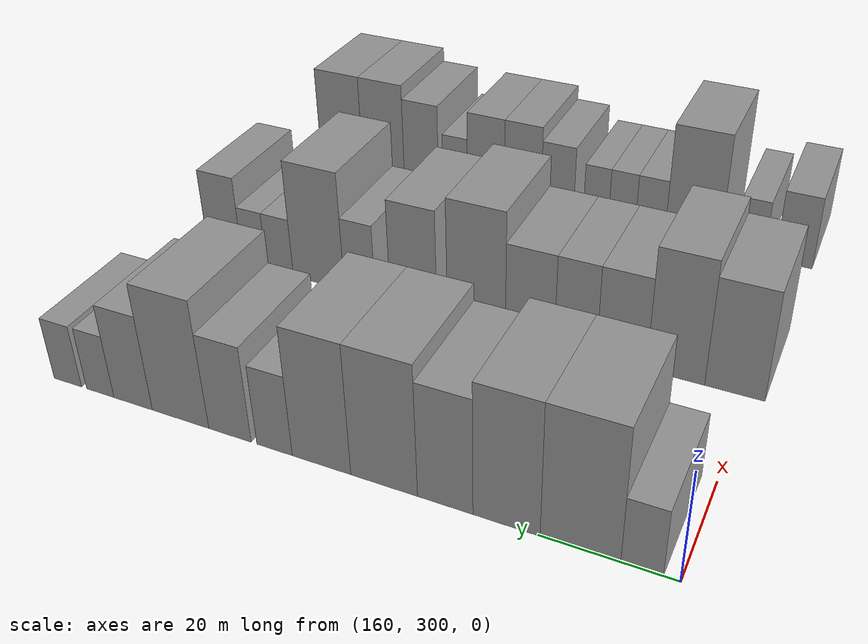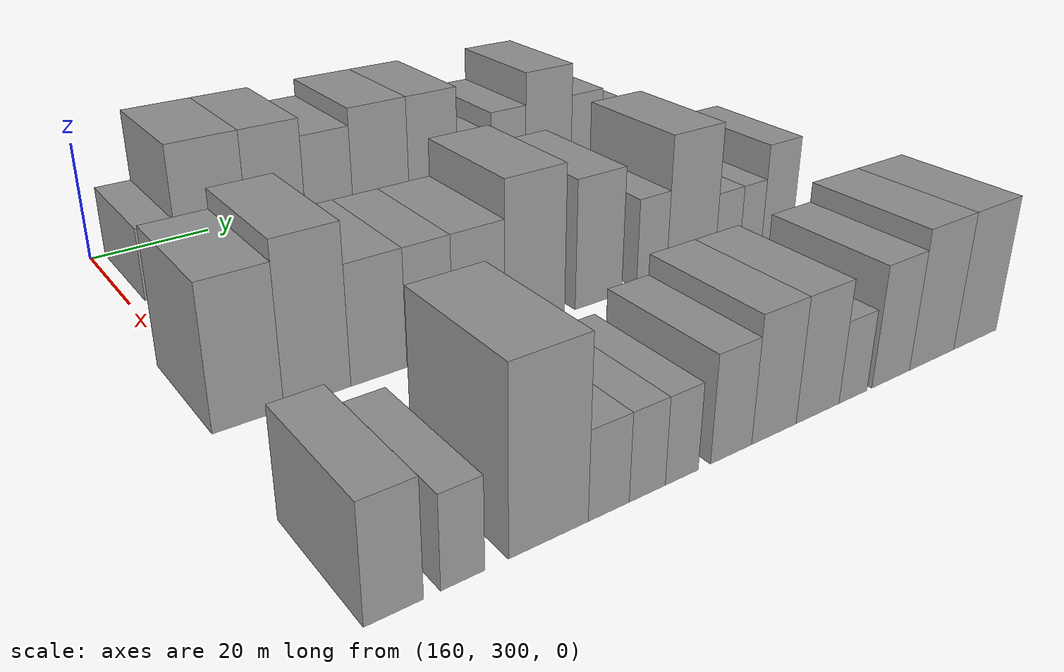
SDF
<sdf version="1.6">
 <world name="default">
  <model name="building_507">
   <static>1</static>
   <pose>170.0000 305.2744 0 0.000000 0.000000 0.000000</pose>
   <link name="link">
    <pose>0 0 6.00 0 0 0</pose>
    <collision name="collision"><geometry><box><size>20.0000 5.8676 12.0000</size></box></geometry></collision>
    <visual name="visual">
     <cast_shadows>0</cast_shadows>
     <geometry><box><size>20.0000 5.8676 12.0000</size></box></geometry>
     <material>
      <script>
       <uri>model://grey_wall/materials/scripts</uri>
       <uri>model://grey_wall/materials/textures</uri>
       <name>vrc/grey_wall</name>
      </script>
     </material>
    </visual>
   </link>
  </model>
  <model name="building_508">
   <static>1</static>
   <pose>170.0000 313.9608 0 0.000000 0.000000 0.000000</pose>
   <link name="link">
    <pose>0 0 12.00 0 0 0</pose>
    <collision name="collision"><geometry><box><size>20.0000 11.5051 24.0000</size></box></geometry></collision>
    <visual name="visual">
     <cast_shadows>0</cast_shadows>
     <geometry><box><size>20.0000 11.5051 24.0000</size></box></geometry>
     <material>
      <script>
       <uri>model://grey_wall/materials/scripts</uri>
       <uri>model://grey_wall/materials/textures</uri>
       <name>vrc/grey_wall</name>
      </script>
     </material>
    </visual>
   </link>
  </model>
  <model name="building_509">
   <static>1</static>
   <pose>170.0000 324.7236 0 0.000000 0.000000 0.000000</pose>
   <link name="link">
    <pose>0 0 12.00 0 0 0</pose>
    <collision name="collision"><geometry><box><size>20.0000 10.0204 24.0000</size></box></geometry></collision>
    <visual name="visual">
     <cast_shadows>0</cast_shadows>
     <geometry><box><size>20.0000 10.0204 24.0000</size></box></geometry>
     <material>
      <script>
       <uri>model://grey_wall/materials/scripts</uri>
       <uri>model://grey_wall/materials/textures</uri>
       <name>vrc/grey_wall</name>
      </script>
     </material>
    </visual>
   </link>
  </model>
  <model name="building_510">
   <static>1</static>
   <pose>170.0000 334.0360 0 0.000000 0.000000 0.000000</pose>
   <link name="link">
    <pose>0 0 10.50 0 0 0</pose>
    <collision name="collision"><geometry><box><size>20.0000 8.6044 21.0000</size></box></geometry></collision>
    <visual name="visual">
     <cast_shadows>0</cast_shadows>
     <geometry><box><size>20.0000 8.6044 21.0000</size></box></geometry>
     <material>
      <script>
       <uri>model://grey_wall/materials/scripts</uri>
       <uri>model://grey_wall/materials/textures</uri>
       <name>vrc/grey_wall</name>
      </script>
     </material>
    </visual>
   </link>
  </model>
  <model name="building_511">
   <static>1</static>
   <pose>170.0000 343.7216 0 0.000000 0.000000 0.000000</pose>
   <link name="link">
    <pose>0 0 12.00 0 0 0</pose>
    <collision name="collision"><geometry><box><size>20.0000 10.7669 24.0000</size></box></geometry></collision>
    <visual name="visual">
     <cast_shadows>0</cast_shadows>
     <geometry><box><size>20.0000 10.7669 24.0000</size></box></geometry>
     <material>
      <script>
       <uri>model://grey_wall/materials/scripts</uri>
       <uri>model://grey_wall/materials/textures</uri>
       <name>vrc/grey_wall</name>
      </script>
     </material>
    </visual>
   </link>
  </model>
  <model name="building_512">
   <static>1</static>
   <pose>170.0000 354.0365 0 0.000000 0.000000 0.000000</pose>
   <link name="link">
    <pose>0 0 12.00 0 0 0</pose>
    <collision name="collision"><geometry><box><size>20.0000 9.8629 24.0000</size></box></geometry></collision>
    <visual name="visual">
     <cast_shadows>0</cast_shadows>
     <geometry><box><size>20.0000 9.8629 24.0000</size></box></geometry>
     <material>
      <script>
       <uri>model://grey_wall/materials/scripts</uri>
       <uri>model://grey_wall/materials/textures</uri>
       <name>vrc/grey_wall</name>
      </script>
     </material>
    </visual>
   </link>
  </model>
  <model name="building_513">
   <static>1</static>
   <pose>170.0000 362.0419 0 0.000000 0.000000 0.000000</pose>
   <link name="link">
    <pose>0 0 7.50 0 0 0</pose>
    <collision name="collision"><geometry><box><size>20.0000 6.1479 15.0000</size></box></geometry></collision>
    <visual name="visual">
     <cast_shadows>0</cast_shadows>
     <geometry><box><size>20.0000 6.1479 15.0000</size></box></geometry>
     <material>
      <script>
       <uri>model://grey_wall/materials/scripts</uri>
       <uri>model://grey_wall/materials/textures</uri>
       <name>vrc/grey_wall</name>
      </script>
     </material>
    </visual>
   </link>
  </model>
  <model name="building_514">
   <static>1</static>
   <pose>170.0000 369.9075 0 0.000000 0.000000 0.000000</pose>
   <link name="link">
    <pose>0 0 9.00 0 0 0</pose>
    <collision name="collision"><geometry><box><size>20.0000 7.5834 18.0000</size></box></geometry></collision>
    <visual name="visual">
     <cast_shadows>0</cast_shadows>
     <geometry><box><size>20.0000 7.5834 18.0000</size></box></geometry>
     <material>
      <script>
       <uri>model://grey_wall/materials/scripts</uri>
       <uri>model://grey_wall/materials/textures</uri>
       <name>vrc/grey_wall</name>
      </script>
     </material>
    </visual>
   </link>
  </model>
  <model name="building_515">
   <static>1</static>
   <pose>170.0000 378.9357 0 0.000000 0.000000 0.000000</pose>
   <link name="link">
    <pose>0 0 12.00 0 0 0</pose>
    <collision name="collision"><geometry><box><size>20.0000 10.4730 24.0000</size></box></geometry></collision>
    <visual name="visual">
     <cast_shadows>0</cast_shadows>
     <geometry><box><size>20.0000 10.4730 24.0000</size></box></geometry>
     <material>
      <script>
       <uri>model://grey_wall/materials/scripts</uri>
       <uri>model://grey_wall/materials/textures</uri>
       <name>vrc/grey_wall</name>
      </script>
     </material>
    </visual>
   </link>
  </model>
  <model name="building_516">
   <static>1</static>
   <pose>170.0000 387.8551 0 0.000000 0.000000 0.000000</pose>
   <link name="link">
    <pose>0 0 9.00 0 0 0</pose>
    <collision name="collision"><geometry><box><size>20.0000 7.3660 18.0000</size></box></geometry></collision>
    <visual name="visual">
     <cast_shadows>0</cast_shadows>
     <geometry><box><size>20.0000 7.3660 18.0000</size></box></geometry>
     <material>
      <script>
       <uri>model://grey_wall/materials/scripts</uri>
       <uri>model://grey_wall/materials/textures</uri>
       <name>vrc/grey_wall</name>
      </script>
     </material>
    </visual>
   </link>
  </model>
  <model name="building_517">
   <static>1</static>
   <pose>170.0000 394.2092 0 0.000000 0.000000 0.000000</pose>
   <link name="link">
    <pose>0 0 6.00 0 0 0</pose>
    <collision name="collision"><geometry><box><size>20.0000 5.3421 12.0000</size></box></geometry></collision>
    <visual name="visual">
     <cast_shadows>0</cast_shadows>
     <geometry><box><size>20.0000 5.3421 12.0000</size></box></geometry>
     <material>
      <script>
       <uri>model://grey_wall/materials/scripts</uri>
       <uri>model://grey_wall/materials/textures</uri>
       <name>vrc/grey_wall</name>
      </script>
     </material>
    </visual>
   </link>
  </model>
  <model name="building_518">
   <static>1</static>
   <pose>170.0000 400.6266 0 0.000000 0.000000 0.000000</pose>
   <link name="link">
    <pose>0 0 6.00 0 0 0</pose>
    <collision name="collision"><geometry><box><size>20.0000 5.4926 12.0000</size></box></geometry></collision>
    <visual name="visual">
     <cast_shadows>0</cast_shadows>
     <geometry><box><size>20.0000 5.4926 12.0000</size></box></geometry>
     <material>
      <script>
       <uri>model://grey_wall/materials/scripts</uri>
       <uri>model://grey_wall/materials/textures</uri>
       <name>vrc/grey_wall</name>
      </script>
     </material>
    </visual>
   </link>
  </model>
  <model name="building_651">
   <static>1</static>
   <pose>210.0000 302.1987 0 0.000000 0.000000 0.000000</pose>
   <link name="link">
    <pose>0 0 10.50 0 0 0</pose>
    <collision name="collision"><geometry><box><size>20.0000 9.6606 21.0000</size></box></geometry></collision>
    <visual name="visual">
     <cast_shadows>0</cast_shadows>
     <geometry><box><size>20.0000 9.6606 21.0000</size></box></geometry>
     <material>
      <script>
       <uri>model://grey_wall/materials/scripts</uri>
       <uri>model://grey_wall/materials/textures</uri>
       <name>vrc/grey_wall</name>
      </script>
     </material>
    </visual>
   </link>
  </model>
  <model name="building_652">
   <static>1</static>
   <pose>210.0000 311.8309 0 0.000000 0.000000 0.000000</pose>
   <link name="link">
    <pose>0 0 12.00 0 0 0</pose>
    <collision name="collision"><geometry><box><size>20.0000 9.6037 24.0000</size></box></geometry></collision>
    <visual name="visual">
     <cast_shadows>0</cast_shadows>
     <geometry><box><size>20.0000 9.6037 24.0000</size></box></geometry>
     <material>
      <script>
       <uri>model://grey_wall/materials/scripts</uri>
       <uri>model://grey_wall/materials/textures</uri>
       <name>vrc/grey_wall</name>
      </script>
     </material>
    </visual>
   </link>
  </model>
  <model name="building_653">
   <static>1</static>
   <pose>210.0000 320.9078 0 0.000000 0.000000 0.000000</pose>
   <link name="link">
    <pose>0 0 9.00 0 0 0</pose>
    <collision name="collision"><geometry><box><size>20.0000 8.5502 18.0000</size></box></geometry></collision>
    <visual name="visual">
     <cast_shadows>0</cast_shadows>
     <geometry><box><size>20.0000 8.5502 18.0000</size></box></geometry>
     <material>
      <script>
       <uri>model://grey_wall/materials/scripts</uri>
       <uri>model://grey_wall/materials/textures</uri>
       <name>vrc/grey_wall</name>
      </script>
     </material>
    </visual>
   </link>
  </model>
  <model name="building_654">
   <static>1</static>
   <pose>210.0000 328.8822 0 0.000000 0.000000 0.000000</pose>
   <link name="link">
    <pose>0 0 9.00 0 0 0</pose>
    <collision name="collision"><geometry><box><size>20.0000 7.3985 18.0000</size></box></geometry></collision>
    <visual name="visual">
     <cast_shadows>0</cast_shadows>
     <geometry><box><size>20.0000 7.3985 18.0000</size></box></geometry>
     <material>
      <script>
       <uri>model://grey_wall/materials/scripts</uri>
       <uri>model://grey_wall/materials/textures</uri>
       <name>vrc/grey_wall</name>
      </script>
     </material>
    </visual>
   </link>
  </model>
  <model name="building_655">
   <static>1</static>
   <pose>210.0000 337.0217 0 0.000000 0.000000 0.000000</pose>
   <link name="link">
    <pose>0 0 9.00 0 0 0</pose>
    <collision name="collision"><geometry><box><size>20.0000 8.8804 18.0000</size></box></geometry></collision>
    <visual name="visual">
     <cast_shadows>0</cast_shadows>
     <geometry><box><size>20.0000 8.8804 18.0000</size></box></geometry>
     <material>
      <script>
       <uri>model://grey_wall/materials/scripts</uri>
       <uri>model://grey_wall/materials/textures</uri>
       <name>vrc/grey_wall</name>
      </script>
     </material>
    </visual>
   </link>
  </model>
  <model name="building_656">
   <static>1</static>
   <pose>210.0000 346.8545 0 0.000000 0.000000 0.000000</pose>
   <link name="link">
    <pose>0 0 12.00 0 0 0</pose>
    <collision name="collision"><geometry><box><size>20.0000 10.7853 24.0000</size></box></geometry></collision>
    <visual name="visual">
     <cast_shadows>0</cast_shadows>
     <geometry><box><size>20.0000 10.7853 24.0000</size></box></geometry>
     <material>
      <script>
       <uri>model://grey_wall/materials/scripts</uri>
       <uri>model://grey_wall/materials/textures</uri>
       <name>vrc/grey_wall</name>
      </script>
     </material>
    </visual>
   </link>
  </model>
  <model name="building_657">
   <static>1</static>
   <pose>210.0000 358.7822 0 0.000000 0.000000 0.000000</pose>
   <link name="link">
    <pose>0 0 10.50 0 0 0</pose>
    <collision name="collision"><geometry><box><size>20.0000 9.0701 21.0000</size></box></geometry></collision>
    <visual name="visual">
     <cast_shadows>0</cast_shadows>
     <geometry><box><size>20.0000 9.0701 21.0000</size></box></geometry>
     <material>
      <script>
       <uri>model://grey_wall/materials/scripts</uri>
       <uri>model://grey_wall/materials/textures</uri>
       <name>vrc/grey_wall</name>
      </script>
     </material>
    </visual>
   </link>
  </model>
  <model name="building_658">
   <static>1</static>
   <pose>210.0000 369.4184 0 0.000000 0.000000 0.000000</pose>
   <link name="link">
    <pose>0 0 7.50 0 0 0</pose>
    <collision name="collision"><geometry><box><size>20.0000 6.2024 15.0000</size></box></geometry></collision>
    <visual name="visual">
     <cast_shadows>0</cast_shadows>
     <geometry><box><size>20.0000 6.2024 15.0000</size></box></geometry>
     <material>
      <script>
       <uri>model://grey_wall/materials/scripts</uri>
       <uri>model://grey_wall/materials/textures</uri>
       <name>vrc/grey_wall</name>
      </script>
     </material>
    </visual>
   </link>
  </model>
  <model name="building_659">
   <static>1</static>
   <pose>210.0000 377.8121 0 0.000000 0.000000 0.000000</pose>
   <link name="link">
    <pose>0 0 12.00 0 0 0</pose>
    <collision name="collision"><geometry><box><size>20.0000 10.5851 24.0000</size></box></geometry></collision>
    <visual name="visual">
     <cast_shadows>0</cast_shadows>
     <geometry><box><size>20.0000 10.5851 24.0000</size></box></geometry>
     <material>
      <script>
       <uri>model://grey_wall/materials/scripts</uri>
       <uri>model://grey_wall/materials/textures</uri>
       <name>vrc/grey_wall</name>
      </script>
     </material>
    </visual>
   </link>
  </model>
  <model name="building_660">
   <static>1</static>
   <pose>210.0000 385.9319 0 0.000000 0.000000 0.000000</pose>
   <link name="link">
    <pose>0 0 6.00 0 0 0</pose>
    <collision name="collision"><geometry><box><size>20.0000 5.6544 12.0000</size></box></geometry></collision>
    <visual name="visual">
     <cast_shadows>0</cast_shadows>
     <geometry><box><size>20.0000 5.6544 12.0000</size></box></geometry>
     <material>
      <script>
       <uri>model://grey_wall/materials/scripts</uri>
       <uri>model://grey_wall/materials/textures</uri>
       <name>vrc/grey_wall</name>
      </script>
     </material>
    </visual>
   </link>
  </model>
  <model name="building_661">
   <static>1</static>
   <pose>210.0000 391.3472 0 0.000000 0.000000 0.000000</pose>
   <link name="link">
    <pose>0 0 6.00 0 0 0</pose>
    <collision name="collision"><geometry><box><size>20.0000 5.1764 12.0000</size></box></geometry></collision>
    <visual name="visual">
     <cast_shadows>0</cast_shadows>
     <geometry><box><size>20.0000 5.1764 12.0000</size></box></geometry>
     <material>
      <script>
       <uri>model://grey_wall/materials/scripts</uri>
       <uri>model://grey_wall/materials/textures</uri>
       <name>vrc/grey_wall</name>
      </script>
     </material>
    </visual>
   </link>
  </model>
  <model name="building_662">
   <static>1</static>
   <pose>210.0000 397.6609 0 0.000000 0.000000 0.000000</pose>
   <link name="link">
    <pose>0 0 9.00 0 0 0</pose>
    <collision name="collision"><geometry><box><size>20.0000 7.4511 18.0000</size></box></geometry></collision>
    <visual name="visual">
     <cast_shadows>0</cast_shadows>
     <geometry><box><size>20.0000 7.4511 18.0000</size></box></geometry>
     <material>
      <script>
       <uri>model://grey_wall/materials/scripts</uri>
       <uri>model://grey_wall/materials/textures</uri>
       <name>vrc/grey_wall</name>
      </script>
     </material>
    </visual>
   </link>
  </model>
  <model name="building_785">
   <static>1</static>
   <pose>250.0000 300.5148 0 0.000000 0.000000 0.000000</pose>
   <link name="link">
    <pose>0 0 7.50 0 0 0</pose>
    <collision name="collision"><geometry><box><size>20.0000 6.8137 15.0000</size></box></geometry></collision>
    <visual name="visual">
     <cast_shadows>0</cast_shadows>
     <geometry><box><size>20.0000 6.8137 15.0000</size></box></geometry>
     <material>
      <script>
       <uri>model://grey_wall/materials/scripts</uri>
       <uri>model://grey_wall/materials/textures</uri>
       <name>vrc/grey_wall</name>
      </script>
     </material>
    </visual>
   </link>
  </model>
  <model name="building_786">
   <static>1</static>
   <pose>250.0000 308.6088 0 0.000000 0.000000 0.000000</pose>
   <link name="link">
    <pose>0 0 6.00 0 0 0</pose>
    <collision name="collision"><geometry><box><size>20.0000 5.3742 12.0000</size></box></geometry></collision>
    <visual name="visual">
     <cast_shadows>0</cast_shadows>
     <geometry><box><size>20.0000 5.3742 12.0000</size></box></geometry>
     <material>
      <script>
       <uri>model://grey_wall/materials/scripts</uri>
       <uri>model://grey_wall/materials/textures</uri>
       <name>vrc/grey_wall</name>
      </script>
     </material>
    </visual>
   </link>
  </model>
  <model name="building_787">
   <static>1</static>
   <pose>250.0000 319.6438 0 0.000000 0.000000 0.000000</pose>
   <link name="link">
    <pose>0 0 12.00 0 0 0</pose>
    <collision name="collision"><geometry><box><size>20.0000 10.6958 24.0000</size></box></geometry></collision>
    <visual name="visual">
     <cast_shadows>0</cast_shadows>
     <geometry><box><size>20.0000 10.6958 24.0000</size></box></geometry>
     <material>
      <script>
       <uri>model://grey_wall/materials/scripts</uri>
       <uri>model://grey_wall/materials/textures</uri>
       <name>vrc/grey_wall</name>
      </script>
     </material>
    </visual>
   </link>
  </model>
  <model name="building_788">
   <static>1</static>
   <pose>250.0000 327.9418 0 0.000000 0.000000 0.000000</pose>
   <link name="link">
    <pose>0 0 6.00 0 0 0</pose>
    <collision name="collision"><geometry><box><size>20.0000 5.9004 12.0000</size></box></geometry></collision>
    <visual name="visual">
     <cast_shadows>0</cast_shadows>
     <geometry><box><size>20.0000 5.9004 12.0000</size></box></geometry>
     <material>
      <script>
       <uri>model://grey_wall/materials/scripts</uri>
       <uri>model://grey_wall/materials/textures</uri>
       <name>vrc/grey_wall</name>
      </script>
     </material>
    </visual>
   </link>
  </model>
  <model name="building_789">
   <static>1</static>
   <pose>250.0000 333.6109 0 0.000000 0.000000 0.000000</pose>
   <link name="link">
    <pose>0 0 6.00 0 0 0</pose>
    <collision name="collision"><geometry><box><size>20.0000 5.4379 12.0000</size></box></geometry></collision>
    <visual name="visual">
     <cast_shadows>0</cast_shadows>
     <geometry><box><size>20.0000 5.4379 12.0000</size></box></geometry>
     <material>
      <script>
       <uri>model://grey_wall/materials/scripts</uri>
       <uri>model://grey_wall/materials/textures</uri>
       <name>vrc/grey_wall</name>
      </script>
     </material>
    </visual>
   </link>
  </model>
  <model name="building_790">
   <static>1</static>
   <pose>250.0000 338.9169 0 0.000000 0.000000 0.000000</pose>
   <link name="link">
    <pose>0 0 6.00 0 0 0</pose>
    <collision name="collision"><geometry><box><size>20.0000 5.1741 12.0000</size></box></geometry></collision>
    <visual name="visual">
     <cast_shadows>0</cast_shadows>
     <geometry><box><size>20.0000 5.1741 12.0000</size></box></geometry>
     <material>
      <script>
       <uri>model://grey_wall/materials/scripts</uri>
       <uri>model://grey_wall/materials/textures</uri>
       <name>vrc/grey_wall</name>
      </script>
     </material>
    </visual>
   </link>
  </model>
  <model name="building_791">
   <static>1</static>
   <pose>250.0000 346.9444 0 0.000000 0.000000 0.000000</pose>
   <link name="link">
    <pose>0 0 7.50 0 0 0</pose>
    <collision name="collision"><geometry><box><size>20.0000 6.8807 15.0000</size></box></geometry></collision>
    <visual name="visual">
     <cast_shadows>0</cast_shadows>
     <geometry><box><size>20.0000 6.8807 15.0000</size></box></geometry>
     <material>
      <script>
       <uri>model://grey_wall/materials/scripts</uri>
       <uri>model://grey_wall/materials/textures</uri>
       <name>vrc/grey_wall</name>
      </script>
     </material>
    </visual>
   </link>
  </model>
  <model name="building_792">
   <static>1</static>
   <pose>250.0000 354.3274 0 0.000000 0.000000 0.000000</pose>
   <link name="link">
    <pose>0 0 9.00 0 0 0</pose>
    <collision name="collision"><geometry><box><size>20.0000 7.8853 18.0000</size></box></geometry></collision>
    <visual name="visual">
     <cast_shadows>0</cast_shadows>
     <geometry><box><size>20.0000 7.8853 18.0000</size></box></geometry>
     <material>
      <script>
       <uri>model://grey_wall/materials/scripts</uri>
       <uri>model://grey_wall/materials/textures</uri>
       <name>vrc/grey_wall</name>
      </script>
     </material>
    </visual>
   </link>
  </model>
  <model name="building_793">
   <static>1</static>
   <pose>250.0000 362.3002 0 0.000000 0.000000 0.000000</pose>
   <link name="link">
    <pose>0 0 9.00 0 0 0</pose>
    <collision name="collision"><geometry><box><size>20.0000 8.0605 18.0000</size></box></geometry></collision>
    <visual name="visual">
     <cast_shadows>0</cast_shadows>
     <geometry><box><size>20.0000 8.0605 18.0000</size></box></geometry>
     <material>
      <script>
       <uri>model://grey_wall/materials/scripts</uri>
       <uri>model://grey_wall/materials/textures</uri>
       <name>vrc/grey_wall</name>
      </script>
     </material>
    </visual>
   </link>
  </model>
  <model name="building_794">
   <static>1</static>
   <pose>250.0000 369.0933 0 0.000000 0.000000 0.000000</pose>
   <link name="link">
    <pose>0 0 6.00 0 0 0</pose>
    <collision name="collision"><geometry><box><size>20.0000 5.5256 12.0000</size></box></geometry></collision>
    <visual name="visual">
     <cast_shadows>0</cast_shadows>
     <geometry><box><size>20.0000 5.5256 12.0000</size></box></geometry>
     <material>
      <script>
       <uri>model://grey_wall/materials/scripts</uri>
       <uri>model://grey_wall/materials/textures</uri>
       <name>vrc/grey_wall</name>
      </script>
     </material>
    </visual>
   </link>
  </model>
  <model name="building_795">
   <static>1</static>
   <pose>250.0000 376.7716 0 0.000000 0.000000 0.000000</pose>
   <link name="link">
    <pose>0 0 9.00 0 0 0</pose>
    <collision name="collision"><geometry><box><size>20.0000 7.8310 18.0000</size></box></geometry></collision>
    <visual name="visual">
     <cast_shadows>0</cast_shadows>
     <geometry><box><size>20.0000 7.8310 18.0000</size></box></geometry>
     <material>
      <script>
       <uri>model://grey_wall/materials/scripts</uri>
       <uri>model://grey_wall/materials/textures</uri>
       <name>vrc/grey_wall</name>
      </script>
     </material>
    </visual>
   </link>
  </model>
  <model name="building_796">
   <static>1</static>
   <pose>250.0000 385.5639 0 0.000000 0.000000 0.000000</pose>
   <link name="link">
    <pose>0 0 10.50 0 0 0</pose>
    <collision name="collision"><geometry><box><size>20.0000 9.7535 21.0000</size></box></geometry></collision>
    <visual name="visual">
     <cast_shadows>0</cast_shadows>
     <geometry><box><size>20.0000 9.7535 21.0000</size></box></geometry>
     <material>
      <script>
       <uri>model://grey_wall/materials/scripts</uri>
       <uri>model://grey_wall/materials/textures</uri>
       <name>vrc/grey_wall</name>
      </script>
     </material>
    </visual>
   </link>
  </model>
  <model name="building_797">
   <static>1</static>
   <pose>250.0000 395.4414 0 0.000000 0.000000 0.000000</pose>
   <link name="link">
    <pose>0 0 10.50 0 0 0</pose>
    <collision name="collision"><geometry><box><size>20.0000 10.0014 21.0000</size></box></geometry></collision>
    <visual name="visual">
     <cast_shadows>0</cast_shadows>
     <geometry><box><size>20.0000 10.0014 21.0000</size></box></geometry>
     <material>
      <script>
       <uri>model://grey_wall/materials/scripts</uri>
       <uri>model://grey_wall/materials/textures</uri>
       <name>vrc/grey_wall</name>
      </script>
     </material>
    </visual>
   </link>
  </model>
 </world>
</sdf>
